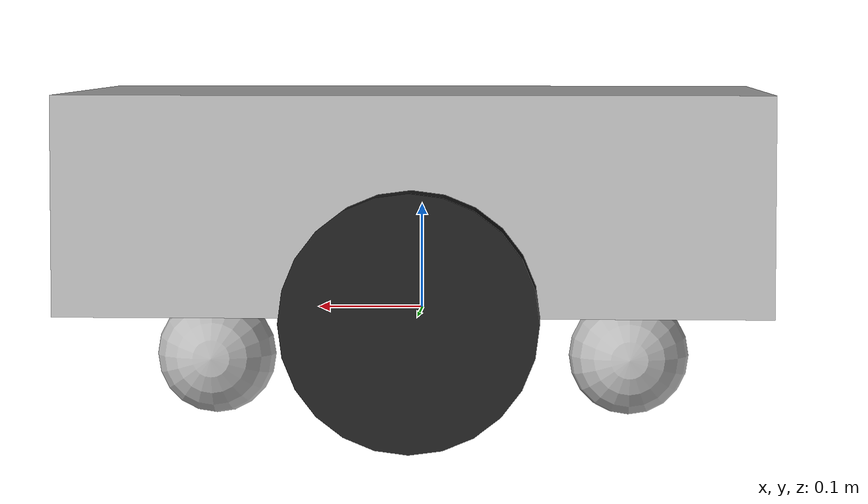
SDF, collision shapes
<?xml version='1.0'?>
<sdf version='1.6'>
  <model name='edu'>
    <link name='base_footprint'>
      <pose frame=''>0 0 0 0 -0 0</pose>
      <inertial>
        <pose frame=''>0 0 0.00933 0 -0 0</pose>
        <mass>20.4386</mass>
        <inertia>
          <ixx>0.41303</ixx>
          <ixy>0</ixy>
          <ixz>0</ixz>
          <iyy>0.787738</iyy>
          <iyz>0</iyz>
          <izz>1.06451</izz>
        </inertia>
      </inertial>
      <velocity_decay/>
      <velocity_decay/>
      <sensor name='camera1' type='camera'>
        <update_rate>30</update_rate>
        <camera name='head'>
          <horizontal_fov>1.39626</horizontal_fov>
          <image>
            <width>800</width>
            <height>800</height>
            <format>R8G8B8</format>
          </image>
          <clip>
            <near>0.02</near>
            <far>300</far>
          </clip>
        </camera>
        <plugin name='camera_controller' filename='libgazebo_ros_camera.so'>
          <alwaysOn>1</alwaysOn>
          <updateRate>0.0</updateRate>
          <cameraName>camera</cameraName>
          <imageTopicName>image_raw</imageTopicName>
          <cameraInfoTopicName>camera_info</cameraInfoTopicName>
          <frameName>camera_link</frameName>
          <hackBaseline>0.07</hackBaseline>
          <distortionK1>0.0</distortionK1>
          <distortionK2>0.0</distortionK2>
          <distortionK3>0.0</distortionK3>
          <distortionT1>0.0</distortionT1>
          <distortionT2>0.0</distortionT2>
          <robotNamespace>/</robotNamespace>
        </plugin>
        <pose frame=''>-0.135 0 1.3975 0 -0 0</pose>
      </sensor>
      <velocity_decay/>
      <gravity>1</gravity>
      <velocity_decay/>
      <sensor name='lds_lfcd_sensor' type='ray'>
        <visualize>0</visualize>
        <update_rate>5</update_rate>
        <ray>
          <scan>
            <horizontal>
              <samples>360</samples>
              <resolution>1</resolution>
              <min_angle>2</min_angle>
              <max_angle>-2</max_angle>
            </horizontal>
            <vertical>
              <samples>1</samples>
              <min_angle>0</min_angle>
              <max_angle>0</max_angle>
            </vertical>
          </scan>
          <range>
            <min>0.12</min>
            <max>5</max>
            <resolution>0.015</resolution>
          </range>
          <noise>
            <type>gaussian</type>
            <mean>0</mean>
            <stddev>0.01</stddev>
          </noise>
        </ray>
        <plugin name='gazebo_ros_lds_lfcd_controller' filename='libgazebo_ros_laser.so'>
          <topicName>scan</topicName>
          <frameName>base_scan</frameName>
          <robotNamespace>/</robotNamespace>
        </plugin>
        <pose frame=''>0.23 0 0.24 0 -0 0</pose>
      </sensor>
      <self_collide>0</self_collide>
      <enable_wind>0</enable_wind>
      <kinematic>0</kinematic>
      <visual name='base_footprint_fixed_joint_lump__base_link_visual'>
        <pose frame=''>0 0 0.01 0 -0 0</pose>
        <geometry>
          <mesh>
            <scale>1 1 1</scale>
            <uri>/home/aioz-chien/Project/Chien/robotic_tutorials/roboticfd/education_robot_ws/src/edu_gazebo/edu_description/meshes/base_link.dae</uri>
          </mesh>
        </geometry>
        <material>
          <shader type='pixel'>
            <normal_map>__default__</normal_map>
          </shader>
        </material>
        <transparency>0</transparency>
        <cast_shadows>1</cast_shadows>
      </visual>
      <visual name='base_footprint_fixed_joint_lump__camera_visual_1'>
        <pose frame=''>-0.135 0 1.3975 0 -0 0</pose>
        <geometry>
          <box>
            <size>0.025 0.025 0.025</size>
          </box>
        </geometry>
        <material>
          <script>
            <name>Gazebo/Blue</name>
            <uri>file://media/materials/scripts/gazebo.material</uri>
          </script>
          <shader type='pixel'>
            <normal_map>__default__</normal_map>
          </shader>
        </material>
        <transparency>0</transparency>
        <cast_shadows>1</cast_shadows>
      </visual>
      <visual name='base_footprint_fixed_joint_lump__caster_back_link_visual_2'>
        <pose frame=''>-0.2 0 -0.046 0 -0 0</pose>
        <geometry>
          <sphere>
            <radius>0.05775</radius>
          </sphere>
        </geometry>
        <material>
          <script>
            <name>Gazebo/FlatBlack</name>
            <uri>file://media/materials/scripts/gazebo.material</uri>
          </script>
          <shader type='pixel'>
            <normal_map>__default__</normal_map>
          </shader>
        </material>
        <transparency>0</transparency>
        <cast_shadows>1</cast_shadows>
      </visual>
      <visual name='base_footprint_fixed_joint_lump__caster_front_link_visual_3'>
        <pose frame=''>0.2 0 -0.046 0 -0 0</pose>
        <geometry>
          <sphere>
            <radius>0.05775</radius>
          </sphere>
        </geometry>
        <material>
          <shader type='pixel'>
            <normal_map>__default__</normal_map>
          </shader>
        </material>
        <transparency>0</transparency>
        <cast_shadows>1</cast_shadows>
      </visual>
      <visual name='base_footprint_fixed_joint_lump__base_scan_visual_4'>
        <pose frame=''>0.23 0 0.24 0 -0 0</pose>
        <geometry>
          <mesh>
            <scale>0.001 0.001 0.001</scale>
            <uri>/home/aioz-chien/Project/Chien/robotic_tutorials/roboticfd/education_robot_ws/src/edu_gazebo/edu_description/meshes/sensors/lds.stl</uri>
          </mesh>
        </geometry>
        <material>
          <script>
            <name>Gazebo/FlatBlack</name>
            <uri>file://media/materials/scripts/gazebo.material</uri>
          </script>
          <shader type='pixel'>
            <normal_map>__default__</normal_map>
          </shader>
        </material>
        <transparency>0</transparency>
        <cast_shadows>1</cast_shadows>
      </visual>
      <collision name='base_footprint_fixed_joint_lump__base_link_collision'>
        <laser_retro>0</laser_retro>
        <max_contacts>10</max_contacts>
        <pose frame=''>0 0 0.11 0 -0 0</pose>
        <geometry>
          <box>
            <size>0.65 0.45 0.2</size>
          </box>
        </geometry>
        <surface>
          <friction>
            <ode>
              <mu>1</mu>
              <mu2>1</mu2>
              <fdir1>0 0 0</fdir1>
              <slip1>0</slip1>
              <slip2>0</slip2>
            </ode>
            <torsional>
              <coefficient>1</coefficient>
              <patch_radius>0</patch_radius>
              <surface_radius>0</surface_radius>
              <use_patch_radius>1</use_patch_radius>
              <ode>
                <slip>0</slip>
              </ode>
            </torsional>
          </friction>
          <bounce>
            <restitution_coefficient>0</restitution_coefficient>
            <threshold>1e+06</threshold>
          </bounce>
          <contact>
            <collide_without_contact>0</collide_without_contact>
            <collide_without_contact_bitmask>1</collide_without_contact_bitmask>
            <collide_bitmask>1</collide_bitmask>
            <ode>
              <soft_cfm>0</soft_cfm>
              <soft_erp>0.2</soft_erp>
              <kp>1e+13</kp>
              <kd>1</kd>
              <max_vel>0.01</max_vel>
              <min_depth>0</min_depth>
            </ode>
            <bullet>
              <split_impulse>1</split_impulse>
              <split_impulse_penetration_threshold>-0.01</split_impulse_penetration_threshold>
              <soft_cfm>0</soft_cfm>
              <soft_erp>0.2</soft_erp>
              <kp>1e+13</kp>
              <kd>1</kd>
            </bullet>
          </contact>
        </surface>
      </collision>
      <collision name='base_footprint_fixed_joint_lump__caster_back_link_collision_1'>
        <laser_retro>0</laser_retro>
        <max_contacts>10</max_contacts>
        <pose frame=''>-0.2 0 -0.046 -1.57 0 0</pose>
        <geometry>
          <sphere>
            <radius>0.05775</radius>
          </sphere>
        </geometry>
        <surface>
          <friction>
            <ode>
              <mu>0.1</mu>
              <mu2>0.1</mu2>
              <fdir1>0 0 0</fdir1>
              <slip1>0</slip1>
              <slip2>0</slip2>
            </ode>
            <torsional>
              <coefficient>1</coefficient>
              <patch_radius>0</patch_radius>
              <surface_radius>0</surface_radius>
              <use_patch_radius>1</use_patch_radius>
              <ode>
                <slip>0</slip>
              </ode>
            </torsional>
          </friction>
          <bounce>
            <restitution_coefficient>0</restitution_coefficient>
            <threshold>1e+06</threshold>
          </bounce>
          <contact>
            <collide_without_contact>0</collide_without_contact>
            <collide_without_contact_bitmask>1</collide_without_contact_bitmask>
            <collide_bitmask>1</collide_bitmask>
            <ode>
              <soft_cfm>0</soft_cfm>
              <soft_erp>0.2</soft_erp>
              <kp>1e+06</kp>
              <kd>100</kd>
              <max_vel>1</max_vel>
              <min_depth>0.001</min_depth>
            </ode>
            <bullet>
              <split_impulse>1</split_impulse>
              <split_impulse_penetration_threshold>-0.01</split_impulse_penetration_threshold>
              <soft_cfm>0</soft_cfm>
              <soft_erp>0.2</soft_erp>
              <kp>1e+06</kp>
              <kd>100</kd>
            </bullet>
          </contact>
        </surface>
      </collision>
      <collision name='base_footprint_fixed_joint_lump__caster_front_link_collision_2'>
        <laser_retro>0</laser_retro>
        <max_contacts>10</max_contacts>
        <pose frame=''>0.2 0 -0.046 -1.57 0 0</pose>
        <geometry>
          <sphere>
            <radius>0.05775</radius>
          </sphere>
        </geometry>
        <surface>
          <friction>
            <ode>
              <mu>1</mu>
              <mu2>1</mu2>
              <fdir1>0 0 0</fdir1>
              <slip1>0</slip1>
              <slip2>0</slip2>
            </ode>
            <torsional>
              <coefficient>1</coefficient>
              <patch_radius>0</patch_radius>
              <surface_radius>0</surface_radius>
              <use_patch_radius>1</use_patch_radius>
              <ode>
                <slip>0</slip>
              </ode>
            </torsional>
          </friction>
          <bounce>
            <restitution_coefficient>0</restitution_coefficient>
            <threshold>1e+06</threshold>
          </bounce>
          <contact>
            <collide_without_contact>0</collide_without_contact>
            <collide_without_contact_bitmask>1</collide_without_contact_bitmask>
            <collide_bitmask>1</collide_bitmask>
            <ode>
              <soft_cfm>0</soft_cfm>
              <soft_erp>0.2</soft_erp>
              <kp>1e+13</kp>
              <kd>1</kd>
              <max_vel>0.01</max_vel>
              <min_depth>0</min_depth>
            </ode>
            <bullet>
              <split_impulse>1</split_impulse>
              <split_impulse_penetration_threshold>-0.01</split_impulse_penetration_threshold>
              <soft_cfm>0</soft_cfm>
              <soft_erp>0.2</soft_erp>
              <kp>1e+13</kp>
              <kd>1</kd>
            </bullet>
          </contact>
        </surface>
      </collision>
    </link>
    <link name='wheel_left_link'>
      <pose frame=''>0 0.25 0.01 -1.57 0 0</pose>
      <inertial>
        <pose frame=''>0 0 0 0 -0 0</pose>
        <mass>0.0284989</mass>
        <inertia>
          <ixx>1.11756e-05</ixx>
          <ixy>-4.23698e-11</ixy>
          <ixz>-5.93817e-09</ixz>
          <iyy>1.11924e-05</iyy>
          <iyz>-1.44001e-11</iyz>
          <izz>2.07126e-05</izz>
        </inertia>
      </inertial>
      <gravity>1</gravity>
      <velocity_decay/>
      <self_collide>0</self_collide>
      <enable_wind>0</enable_wind>
      <kinematic>0</kinematic>
      <visual name='wheel_left_link_visual'>
        <pose frame=''>0 0 0 1.57 -0 0</pose>
        <geometry>
          <mesh>
            <scale>0.0035 0.0035 0.0035</scale>
            <uri>/home/aioz-chien/Project/Chien/robotic_tutorials/roboticfd/education_robot_ws/src/edu_gazebo/edu_description/meshes/wheels/left_tire.stl</uri>
          </mesh>
        </geometry>
        <material>
          <script>
            <name>Gazebo/FlatBlack</name>
            <uri>file://media/materials/scripts/gazebo.material</uri>
          </script>
          <shader type='pixel'/>
        </material>
        <transparency>0</transparency>
        <cast_shadows>1</cast_shadows>
      </visual>
      <collision name='wheel_left_link_collision'>
        <laser_retro>0</laser_retro>
        <max_contacts>10</max_contacts>
        <pose frame=''>0 0 0 0 -0 0</pose>
        <geometry>
          <cylinder>
            <radius>0.1155</radius>
            <length>0.063</length>
          </cylinder>
        </geometry>
        <surface>
          <friction>
            <ode>
              <mu>0.1</mu>
              <mu2>0.1</mu2>
              <fdir1>1 0 0</fdir1>
              <slip1>0</slip1>
              <slip2>0</slip2>
            </ode>
            <torsional>
              <coefficient>1</coefficient>
              <patch_radius>0</patch_radius>
              <surface_radius>0</surface_radius>
              <use_patch_radius>1</use_patch_radius>
              <ode>
                <slip>0</slip>
              </ode>
            </torsional>
          </friction>
          <bounce>
            <restitution_coefficient>0</restitution_coefficient>
            <threshold>1e+06</threshold>
          </bounce>
          <contact>
            <collide_without_contact>0</collide_without_contact>
            <collide_without_contact_bitmask>1</collide_without_contact_bitmask>
            <collide_bitmask>1</collide_bitmask>
            <ode>
              <soft_cfm>0</soft_cfm>
              <soft_erp>0.2</soft_erp>
              <kp>500000</kp>
              <kd>10</kd>
              <max_vel>0.1</max_vel>
              <min_depth>0.001</min_depth>
            </ode>
            <bullet>
              <split_impulse>1</split_impulse>
              <split_impulse_penetration_threshold>-0.01</split_impulse_penetration_threshold>
              <soft_cfm>0</soft_cfm>
              <soft_erp>0.2</soft_erp>
              <kp>500000</kp>
              <kd>10</kd>
            </bullet>
          </contact>
        </surface>
      </collision>
    </link>
    <link name='wheel_right_link'>
      <pose frame=''>0 -0.25 0.01 -1.57 0 0</pose>
      <inertial>
        <pose frame=''>0 0 0 0 -0 0</pose>
        <mass>0.0284989</mass>
        <inertia>
          <ixx>1.11756e-05</ixx>
          <ixy>-4.23698e-11</ixy>
          <ixz>-5.93817e-09</ixz>
          <iyy>1.11924e-05</iyy>
          <iyz>-1.44001e-11</iyz>
          <izz>2.07126e-05</izz>
        </inertia>
      </inertial>
      <gravity>1</gravity>
      <velocity_decay/>
      <self_collide>0</self_collide>
      <enable_wind>0</enable_wind>
      <kinematic>0</kinematic>
      <visual name='wheel_right_link_visual'>
        <pose frame=''>0 0 0 1.57 -0 0</pose>
        <geometry>
          <mesh>
            <scale>0.0035 0.0035 0.0035</scale>
            <uri>/home/aioz-chien/Project/Chien/robotic_tutorials/roboticfd/education_robot_ws/src/edu_gazebo/edu_description/meshes/wheels/right_tire.stl</uri>
          </mesh>
        </geometry>
        <material>
          <script>
            <name>Gazebo/FlatBlack</name>
            <uri>file://media/materials/scripts/gazebo.material</uri>
          </script>
          <shader type='pixel'/>
        </material>
        <transparency>0</transparency>
        <cast_shadows>1</cast_shadows>
      </visual>
      <collision name='wheel_right_link_collision'>
        <laser_retro>0</laser_retro>
        <max_contacts>10</max_contacts>
        <pose frame=''>0 0 0 0 -0 0</pose>
        <geometry>
          <cylinder>
            <radius>0.1155</radius>
            <length>0.063</length>
          </cylinder>
        </geometry>
        <surface>
          <friction>
            <ode>
              <mu>0.1</mu>
              <mu2>0.1</mu2>
              <fdir1>1 0 0</fdir1>
              <slip1>0</slip1>
              <slip2>0</slip2>
            </ode>
            <torsional>
              <coefficient>1</coefficient>
              <patch_radius>0</patch_radius>
              <surface_radius>0</surface_radius>
              <use_patch_radius>1</use_patch_radius>
              <ode>
                <slip>0</slip>
              </ode>
            </torsional>
          </friction>
          <bounce>
            <restitution_coefficient>0</restitution_coefficient>
            <threshold>1e+06</threshold>
          </bounce>
          <contact>
            <collide_without_contact>0</collide_without_contact>
            <collide_without_contact_bitmask>1</collide_without_contact_bitmask>
            <collide_bitmask>1</collide_bitmask>
            <ode>
              <soft_cfm>0</soft_cfm>
              <soft_erp>0.2</soft_erp>
              <kp>500000</kp>
              <kd>10</kd>
              <max_vel>0.1</max_vel>
              <min_depth>0.001</min_depth>
            </ode>
            <bullet>
              <split_impulse>1</split_impulse>
              <split_impulse_penetration_threshold>-0.01</split_impulse_penetration_threshold>
              <soft_cfm>0</soft_cfm>
              <soft_erp>0.2</soft_erp>
              <kp>500000</kp>
              <kd>10</kd>
            </bullet>
          </contact>
        </surface>
      </collision>
    </link>
    <joint name='wheel_left_joint' type='revolute'>
      <parent>base_footprint</parent>
      <child>wheel_left_link</child>
      <pose frame=''>0 0 0 0 -0 0</pose>
      <axis>
        <xyz>0 1 0.000796</xyz>
        <use_parent_model_frame>1</use_parent_model_frame>
        <limit>
          <lower>-1e+16</lower>
          <upper>1e+16</upper>
          <effort>-1</effort>
          <velocity>-1</velocity>
        </limit>
        <dynamics>
          <spring_reference>0</spring_reference>
          <spring_stiffness>0</spring_stiffness>
          <damping>0</damping>
          <friction>0</friction>
        </dynamics>
      </axis>
      <physics>
        <ode>
          <limit>
            <cfm>0</cfm>
            <erp>0.2</erp>
          </limit>
          <suspension>
            <cfm>0</cfm>
            <erp>0.2</erp>
          </suspension>
        </ode>
      </physics>
    </joint>
    <joint name='wheel_right_joint' type='revolute'>
      <parent>base_footprint</parent>
      <child>wheel_right_link</child>
      <pose frame=''>0 0 0 0 -0 0</pose>
      <axis>
        <xyz>0 1 0.000796</xyz>
        <use_parent_model_frame>1</use_parent_model_frame>
        <limit>
          <lower>-1e+16</lower>
          <upper>1e+16</upper>
          <effort>-1</effort>
          <velocity>-1</velocity>
        </limit>
        <dynamics>
          <spring_reference>0</spring_reference>
          <spring_stiffness>0</spring_stiffness>
          <damping>0</damping>
          <friction>0</friction>
        </dynamics>
      </axis>
      <physics>
        <ode>
          <limit>
            <cfm>0</cfm>
            <erp>0.2</erp>
          </limit>
          <suspension>
            <cfm>0</cfm>
            <erp>0.2</erp>
          </suspension>
        </ode>
      </physics>
    </joint>
    <static>0</static>
    <allow_auto_disable>1</allow_auto_disable>
    <plugin name='imu_plugin' filename='libgazebo_ros_imu.so'>
      <alwaysOn>1</alwaysOn>
      <bodyName>imu_link</bodyName>
      <frameName>imu_link</frameName>
      <topicName>imu</topicName>
      <serviceName>imu_service</serviceName>
      <gaussianNoise>0.0</gaussianNoise>
      <updateRate>200</updateRate>
      <imu>
        <noise>
          <type>gaussian</type>
          <rate>
            <mean>0.0</mean>
            <stddev>2e-4</stddev>
            <bias_mean>0.0000075</bias_mean>
            <bias_stddev>0.0000008</bias_stddev>
          </rate>
          <accel>
            <mean>0.0</mean>
            <stddev>1.7e-2</stddev>
            <bias_mean>0.1</bias_mean>
            <bias_stddev>0.001</bias_stddev>
          </accel>
        </noise>
      </imu>
      <robotNamespace>/</robotNamespace>
    </plugin>
    <plugin name='edu_burger_controller' filename='libgazebo_ros_diff_drive.so'>
      <commandTopic>cmd_vel</commandTopic>
      <odometryTopic>odom</odometryTopic>
      <odometryFrame>odom</odometryFrame>
      <odometrySource>world</odometrySource>
      <publishOdomTF>1</publishOdomTF>
      <robotBaseFrame>base_footprint</robotBaseFrame>
      <publishWheelTF>0</publishWheelTF>
      <publishTf>1</publishTf>
      <publishWheelJointState>1</publishWheelJointState>
      <legacyMode>0</legacyMode>
      <updateRate>30</updateRate>
      <leftJoint>wheel_left_joint</leftJoint>
      <rightJoint>wheel_right_joint</rightJoint>
      <wheelSeparation>0.160</wheelSeparation>
      <wheelDiameter>0.066</wheelDiameter>
      <wheelAcceleration>1</wheelAcceleration>
      <wheelTorque>10</wheelTorque>
      <rosDebugLevel>na</rosDebugLevel>
      <robotNamespace>/</robotNamespace>
    </plugin>
  </model>
</sdf>
